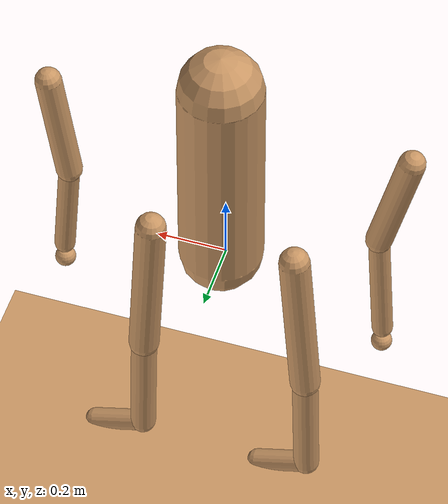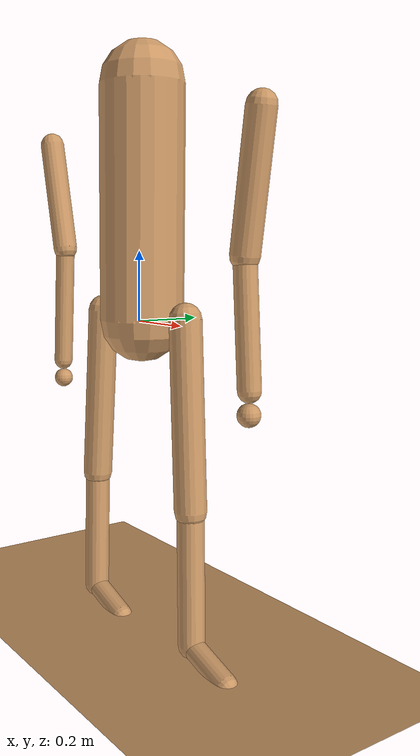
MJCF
<?xml version="1.0" ?>
<mujoco model="V50_Mecha">
  <compiler angle="degree" coordinate="local" inertiafromgeom="false"/>
  <option timestep="0.002" integrator="RK4" gravity="0 0 -9.81"/>
  <default>
    <geom condim="3" friction="1.0 0.005 0.0001" material="" contype="1" conaffinity="1"/>
    <motor ctrllimited="true" ctrlrange="-1 1"/>
  </default>
  <asset>
    <texture builtin="gradient" height="100" rgb1="0.3 0.35 0.4" rgb2="0.0 0.0 0.0" type="skybox" width="100"/>
    <texture builtin="flat" height="1278" mark="cross" markrgb="1 1 1" name="texgeom" random="0.01" rgb1="0.8 0.6 0.4" rgb2="0.8 0.6 0.4" type="cube" width="127"/>
    <material name="MatGeom" reflectance="0" shininess="0.1" specular="0.5" texrepeat="5 5" texture="texgeom"/>
  </asset>
  <worldbody>
    <geom name="floor" pos="0 0 -0.92" size="20 20 0.1" type="plane" material="MatGeom"/>
    <light cutoff="100" diffuse="1 1 1" dir="-0 0 -1.3" directional="true" exponent="1" pos="0 0 2.5" specular="0.1 0.1 0.1"/>
    <body name="torso" pos="0.013 0.0 0.354">
      <inertial pos="0 0 0" mass="112.0" diaginertia="2.24 2.24 1.68"/>
      <joint name="root" type="free" pos="0 0 0" limited="false"/>
      <geom name="torso_geom" type="capsule" fromto="0 0 0.30 0 0 -0.35" size="0.12" material="MatGeom"/>
      <body name="upper_leg_L" pos="-0.213 0.0 -0.334">
        <inertial pos="0 0 0" mass="22.400000000000002" diaginertia="0.5076628666666666 0.5076628666666666 0.5076628666666666"/>
        <joint name="hip_L" type="hinge" axis="1 0 0" pos="0 0 0" limited="true" range="-40.0 40.0" damping="5" stiffness="0"/>
        <geom name="upper_leg_L_geom" type="capsule" fromto="0 0 0 -0.04 0.0 -0.52" size="0.045" material="MatGeom"/>
        <body name="lower_leg_L" pos="-0.04 0.0 -0.52">
          <inertial pos="0 0 0" mass="14.0" diaginertia="0.168555345 0.168555345 0.168555345"/>
          <joint name="knee_L" type="hinge" axis="1 0 0" pos="0 0 0" limited="true" range="-30.0 10.0" damping="5" stiffness="0"/>
          <geom name="lower_leg_L_geom" type="capsule" fromto="0 0 0 -0.01 0.0 -0.38" size="0.038" material="MatGeom"/>
          <body name="foot_L" pos="-0.01 0.0 -0.38">
            <inertial pos="0 0 0" mass="5.6000000000000005" diaginertia="0.016800000000000002 0.016800000000000002 0.016800000000000002"/>
            <joint name="ankle_L" type="hinge" axis="1 0 0" pos="0 0 0" limited="true" range="-20.0 20.0" damping="5" stiffness="0"/>
            <geom name="foot_L_geom" type="capsule" fromto="0 0 0 0.15 0 -0.05" size="0.032" material="MatGeom"/>
            <geom name="foot_L_contact" type="sphere" size="0.04" pos="0.15 0 -0.08" condim="6" friction="1.5 0.01 0.001"/>
          </body>
        </body>
      </body>
      <body name="upper_leg_R" pos="0.207 0.0 -0.334">
        <inertial pos="0 0 0" mass="22.400000000000002" diaginertia="0.5064953786666667 0.5064953786666667 0.5064953786666667"/>
        <joint name="hip_R" type="hinge" axis="1 0 0" pos="0 0 0" limited="true" range="-40.0 40.0" damping="5" stiffness="0"/>
        <geom name="upper_leg_R_geom" type="capsule" fromto="0 0 0 0.03 0.0 -0.52" size="0.045" material="MatGeom"/>
        <body name="lower_leg_R" pos="0.03 0.0 -0.52">
          <inertial pos="0 0 0" mass="14.0" diaginertia="0.168555345 0.168555345 0.168555345"/>
          <joint name="knee_R" type="hinge" axis="1 0 0" pos="0 0 0" limited="true" range="-30.0 10.0" damping="5" stiffness="0"/>
          <geom name="lower_leg_R_geom" type="capsule" fromto="0 0 0 0.01 0.0 -0.38" size="0.038" material="MatGeom"/>
          <body name="foot_R" pos="0.01 0.0 -0.38">
            <inertial pos="0 0 0" mass="5.6000000000000005" diaginertia="0.016800000000000002 0.016800000000000002 0.016800000000000002"/>
            <joint name="ankle_R" type="hinge" axis="1 0 0" pos="0 0 0" limited="true" range="-20.0 20.0" damping="5" stiffness="0"/>
            <geom name="foot_R_geom" type="capsule" fromto="0 0 0 0.15 0 -0.05" size="0.032" material="MatGeom"/>
            <geom name="foot_R_contact" type="sphere" size="0.04" pos="0.15 0 -0.08" condim="6" friction="1.5 0.01 0.001"/>
          </body>
        </body>
      </body>
      <body name="upper_arm_L" pos="-0.531 0.0 0.187">
        <inertial pos="0 0 0" mass="11.200000000000001" diaginertia="0.11134774933333334 0.11134774933333334 0.11134774933333334"/>
        <joint name="shoulder_L" type="hinge" axis="1 0 0" pos="0 0 0" limited="true" range="-100.0 100.0" damping="5" stiffness="0"/>
        <geom name="upper_arm_L_geom" type="capsule" fromto="0 0 0 0.08 0.0 -0.336" size="0.038" material="MatGeom"/>
        <body name="lower_arm_L" pos="0.08 0.0 -0.336">
          <inertial pos="0 0 0" mass="7.0" diaginertia="0.08016078583333332 0.08016078583333332 0.08016078583333332"/>
          <joint name="elbow_L" type="hinge" axis="1 0 0" pos="0 0 0" limited="true" range="-120.0 10.0" damping="5" stiffness="0"/>
          <geom name="lower_arm_L_geom" type="capsule" fromto="0 0 0 -0.022 0.0 -0.37" size="0.030" material="MatGeom"/>
          <body name="hand_L" pos="-0.022 0.0 -0.37">
            <inertial pos="0 0 0" mass="2.8000000000000003" diaginertia="0.0028000000000000004 0.0028000000000000004 0.0028000000000000004"/>
            <joint name="wrist_L" type="hinge" axis="1 0 0" pos="0 0 0" limited="true" range="-30.0 30.0" damping="5" stiffness="0"/>
            <geom name="hand_L_geom" type="sphere" size="0.03" pos="0 0 -0.06" material="MatGeom"/>
          </body>
        </body>
      </body>
      <body name="upper_arm_R" pos="0.49 0.0 0.178">
        <inertial pos="0 0 0" mass="11.200000000000001" diaginertia="0.11134774933333334 0.11134774933333334 0.11134774933333334"/>
        <joint name="shoulder_R" type="hinge" axis="1 0 0" pos="0 0 0" limited="true" range="-100.0 100.0" damping="5" stiffness="0"/>
        <geom name="upper_arm_R_geom" type="capsule" fromto="0 0 0 -0.048 0.0 -0.342" size="0.038" material="MatGeom"/>
        <body name="lower_arm_R" pos="-0.048 0.0 -0.342">
          <inertial pos="0 0 0" mass="7.0" diaginertia="0.06199433333333334 0.06199433333333334 0.06199433333333334"/>
          <joint name="elbow_R" type="hinge" axis="1 0 0" pos="0 0 0" limited="true" range="-120.0 10.0" damping="5" stiffness="0"/>
          <geom name="lower_arm_R_geom" type="capsule" fromto="0 0 0 0.025 0.0 -0.325" size="0.030" material="MatGeom"/>
          <body name="hand_R" pos="0.025 0.0 -0.325">
            <inertial pos="0 0 0" mass="2.8000000000000003" diaginertia="0.0028000000000000004 0.0028000000000000004 0.0028000000000000004"/>
            <joint name="wrist_R" type="hinge" axis="1 0 0" pos="0 0 0" limited="true" range="-30.0 30.0" damping="5" stiffness="0"/>
            <geom name="hand_R_geom" type="sphere" size="0.03" pos="0 0 -0.06" material="MatGeom"/>
          </body>
        </body>
      </body>
    </body>
  </worldbody>
  <actuator>
    <motor name="act_hip_L" joint="hip_L" gear="400"/>
    <motor name="act_knee_L" joint="knee_L" gear="300"/>
    <motor name="act_ankle_L" joint="ankle_L" gear="200"/>
    <motor name="act_hip_R" joint="hip_R" gear="400"/>
    <motor name="act_knee_R" joint="knee_R" gear="300"/>
    <motor name="act_ankle_R" joint="ankle_R" gear="200"/>
    <motor name="act_shoulder_L" joint="shoulder_L" gear="200"/>
    <motor name="act_elbow_L" joint="elbow_L" gear="150"/>
    <motor name="act_wrist_L" joint="wrist_L" gear="80"/>
    <motor name="act_shoulder_R" joint="shoulder_R" gear="200"/>
    <motor name="act_elbow_R" joint="elbow_R" gear="150"/>
    <motor name="act_wrist_R" joint="wrist_R" gear="80"/>
  </actuator>
  <sensor>
    <jointpos name="pos_hip_L" joint="hip_L"/>
    <jointvel name="vel_hip_L" joint="hip_L"/>
    <jointpos name="pos_knee_L" joint="knee_L"/>
    <jointvel name="vel_knee_L" joint="knee_L"/>
    <jointpos name="pos_ankle_L" joint="ankle_L"/>
    <jointvel name="vel_ankle_L" joint="ankle_L"/>
    <jointpos name="pos_hip_R" joint="hip_R"/>
    <jointvel name="vel_hip_R" joint="hip_R"/>
    <jointpos name="pos_knee_R" joint="knee_R"/>
    <jointvel name="vel_knee_R" joint="knee_R"/>
    <jointpos name="pos_ankle_R" joint="ankle_R"/>
    <jointvel name="vel_ankle_R" joint="ankle_R"/>
    <jointpos name="pos_shoulder_L" joint="shoulder_L"/>
    <jointvel name="vel_shoulder_L" joint="shoulder_L"/>
    <jointpos name="pos_elbow_L" joint="elbow_L"/>
    <jointvel name="vel_elbow_L" joint="elbow_L"/>
    <jointpos name="pos_wrist_L" joint="wrist_L"/>
    <jointvel name="vel_wrist_L" joint="wrist_L"/>
    <jointpos name="pos_shoulder_R" joint="shoulder_R"/>
    <jointvel name="vel_shoulder_R" joint="shoulder_R"/>
    <jointpos name="pos_elbow_R" joint="elbow_R"/>
    <jointvel name="vel_elbow_R" joint="elbow_R"/>
    <jointpos name="pos_wrist_R" joint="wrist_R"/>
    <jointvel name="vel_wrist_R" joint="wrist_R"/>
  </sensor>
</mujoco>
